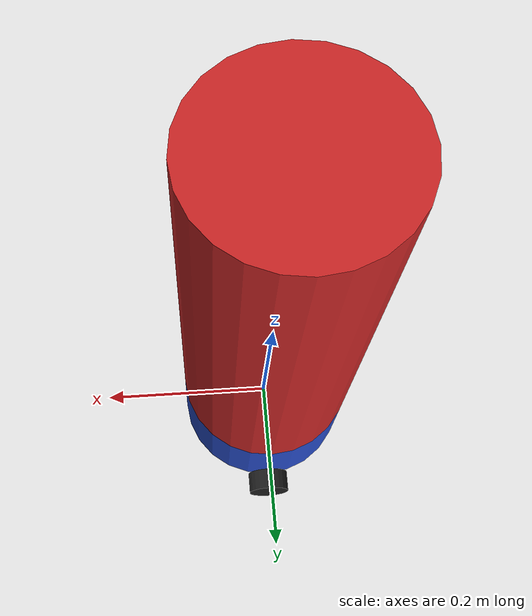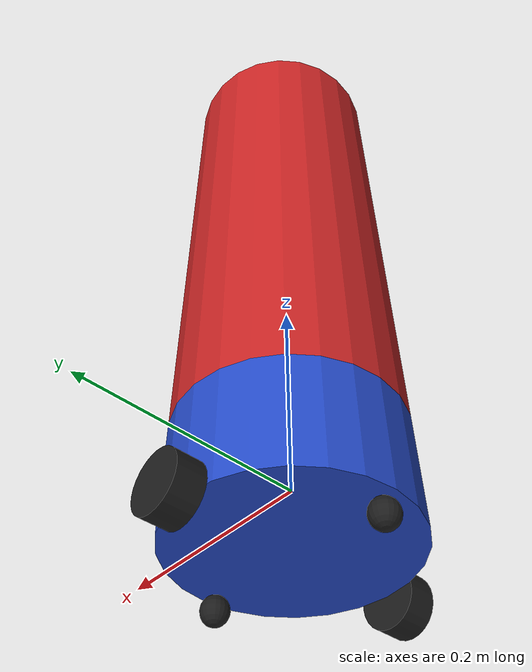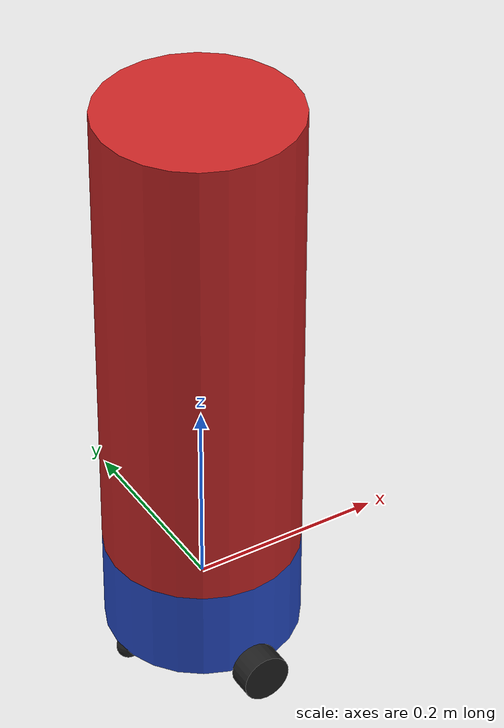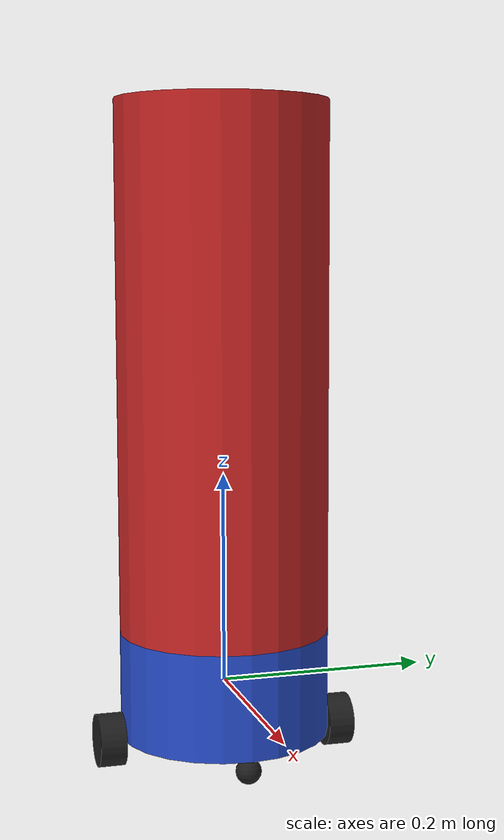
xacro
<?xml version="1.0"?>
<robot name="roscontrol" xmlns:xacro="http://ros.org/wiki/xacro">

<xacro:property name="bodyrad" value="0.1"/>
<xacro:property name="baselen" value="0.1"/>
<xacro:property name="base_mass" value="1"/>
<xacro:property name="toplen" value="0.5"/>
<xacro:property name="top_mass" value="8"/>
<xacro:property name="wheelrad" value="0.025"/>
<xacro:property name="wheelwidth" value="0.025"/>
<xacro:property name="casterrad" value="0.012"/>
<xacro:property name="caster_mass" value="0.2"/>
<xacro:property name="wheel_mass" value="0.2"/>

 <xacro:macro name="default_inertial" params="mass">
    <inertial>
      <mass value="${mass}" />
      <inertia ixx="1.0" ixy="0.0" ixz="0.0" iyy="1.0" iyz="0.0" izz="1.0" />
    </inertial>
  </xacro:macro>
<xacro:macro name="cylinder_inertia" params ="m r h">
  <inertial>
   <mass value="${m}"/>
   <inertia ixx="${m*(3*r*r+h*h)/12}"  ixy="0.0" ixz="0.0"
            iyy="${m*(3*r*r+h*h)/12}"  iyz= "0.0"
            izz="${m*r*r/2}"/>
   </inertial>
</xacro:macro>

<xacro:macro name="sphere_inertia" params ="m r">
  <inertial>
   <mass value="${m}"/>
   <inertia ixx="${m*(r*r*2)/5}"  ixy="0.0" ixz="0.0"
            iyy="${m*(r*r*2)/5}"  iyz= "0.0"
            izz="${m*(r*r*2)/5}"/>
   </inertial>
</xacro:macro>

<xacro:macro name="caster" params="suffix reflect">
<link name="${suffix}_caster_link">
  <visual>
   <geometry>
     <sphere radius="${casterrad}"/>
     </geometry>
     <origin rpy="0 0 0" xyz="${reflect*0.0875} 0 -0.0624"/>
     <material name="black"/>
    </visual>
    <surface>
            <friction>
              <ode>
                <mu>0.0</mu>
                <mu2>0.0</mu2>
              </ode>
            </friction>
          </surface>
    <collision>
    <origin rpy="0  0  0" xyz="${reflect*0.0875} 0 -0.0624"/>
      <geometry>
        <sphere radius="${casterrad}" />
      </geometry>
    </collision>
   <xacro:sphere_inertia m="${caster_mass}" r="${casterrad}"/>
  </link>
</xacro:macro>

<link name="base_link">
    <visual>
      <geometry>
        <cylinder length="${baselen}" radius="${bodyrad}" />
      </geometry>
      <origin xyz="0 0 0"/>
    </visual>

    <collision>
      <origin xyz="0 0 0.0"/>
      <geometry>
        <cylinder length="${baselen}" radius="${bodyrad}" />
      </geometry>
    </collision>

  </link>

  <gazebo reference="base_link">
    <gravity>true</gravity>
    <material>Gazebo/Blue</material>
    <sensor name="imu_sensor" type="imu">
      <always_on>true</always_on>
      <update_rate>100</update_rate>
      <visualize>true</visualize>
      <topic>__default_topic__</topic>
      <plugin filename="libgazebo_ros_imu_sensor.so" name="imu_plugin">
        <topicName>imu</topicName>
        <bodyName>imu_link</bodyName>
        <updateRateHZ>10.0</updateRateHZ>
        <gaussianNoise>0.0</gaussianNoise>
        <xyzOffset>0 0 0</xyzOffset>
        <rpyOffset>0 0 0</rpyOffset>
        <frameName>imu_link</frameName>
      </plugin>
      <pose>0 0 0 0 0 0</pose>
    </sensor>
  </gazebo>

<xacro:caster suffix="front" reflect="1"/>

<joint name="casterf_to_base" type="fixed">
    <axis xyz="1 1 1"/>
    <parent link="base_link"/>
    <child link="front_caster_link"/>
    <origin xyz="0 0 0"/>
</joint>

<gazebo reference="front_caster_link">
      <surface>
            <friction>
              <ode>
                <mu>0.005</mu>
                <mu2>0.005</mu2>
              </ode>
            </friction>
          </surface>
      <material>Gazebo/Black</material>
     </gazebo>

<xacro:caster suffix="back" reflect="-1"/>

<joint name="casterb_to_base" type="fixed">
    <axis xyz="1 1 1"/>
    <parent link="base_link"/>
    <child link="back_caster_link"/>
    <origin xyz="0 0 0"/>
</joint>

<gazebo reference="back_caster_link">
     <surface>
            <friction>
              <ode>
                <mu>0.005</mu>
                <mu2>0.005</mu2>
              </ode>
            </friction>
          </surface>
      <material>Gazebo/Black</material>
     </gazebo>

<link name="top_link">
    <visual>
      <geometry>
        <cylinder radius="${bodyrad}" length="${toplen}"/>
      </geometry>
      <origin xyz="0 0 0.25" />
     </visual>
    <collision>
      <origin xyz="0 0 0.25" rpy="0 0 0" />
      <geometry>
        <cylinder radius="${bodyrad}" length="${toplen}"/>
      </geometry>
    </collision>
    <xacro:cylinder_inertia m="${top_mass}" r="${bodyrad}" h="${toplen}"/>
</link>

<gazebo reference="top_link">
      <gravity value="True"/>
      <material>Gazebo/Red</material>
    </gazebo>

<joint name="base_to_top" type="fixed">
    <parent link="base_link"/>
    <child link="top_link"/>
    <origin xyz="0 0 0.05"/>
</joint>

<xacro:macro name="wheel" params="prefix suffix reflect">

    <link name="${prefix}_${suffix}_wheel">
      <visual>
        <origin rpy="1.57 0 0" xyz="0 0 0" />
        <geometry>
          <cylinder radius="${wheelrad}" length="${wheelwidth}"/>
        </geometry>
        <material name="black"/>
      </visual>
      <collision>
        <origin rpy="1.57 0 0" xyz="0 0 0"/>
        <geometry>
          <cylinder radius="${wheelrad}" length="${wheelwidth}"/>
        </geometry>
      </collision>
     <xacro:cylinder_inertia m="${wheel_mass}" r="${wheelrad/3}" h="${wheelwidth}"/>
    </link>
    <joint name="${prefix}_${suffix}_wheel_joint" type="continuous">
      <axis xyz="0 1 0" rpy="0 0 0" />
      <parent link="base_link"/>
      <child link="${prefix}_${suffix}_wheel"/>
      <origin xyz="0 ${reflect*0.1126} -0.05" rpy="0 0 0"/>
      <dynamics damping="0.20" friction="0.0"/>
      <limit effort="10000" velocity="30"/>
    </joint>
    <gazebo reference="${prefix}_${suffix}_wheel">
      <mu1 value="200.0"/>
      <mu2 value="100.0"/>
      <kp value="10000000.0" />
      <kd value="1.0" />
      <material>Gazebo/Black</material>
    </gazebo>

  <transmission name="${prefix}_${suffix}_wheel_trans">
    <type>transmission_interface/SimpleTransmission</type>
    <actuator name="${prefix}_${suffix}_wheel_motor">
    <hardwareInterface>EffortJointInterface</hardwareInterface>
      <mechanicalReduction>1</mechanicalReduction>
    </actuator>
    <joint name="${prefix}_${suffix}_wheel_joint">
    <hardwareInterface>hardware_interface/VelocityJointInterface</hardwareInterface>
    </joint>
  </transmission>

 </xacro:macro>

<xacro:wheel prefix="scooter" suffix="right" reflect="-1"/>
<xacro:wheel prefix="scooter" suffix="left" reflect="1"/>

<gazebo>
    <plugin name="gazebo_ros_control" filename="libgazebo_ros_control.so">
      <robotNamespace>/</robotNamespace>
    </plugin>
  </gazebo>

</robot>
